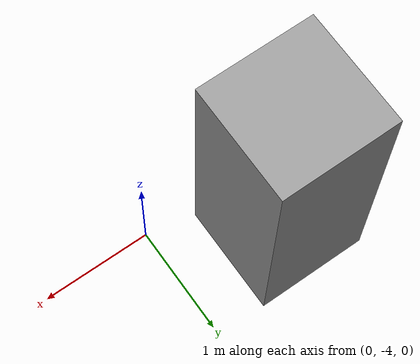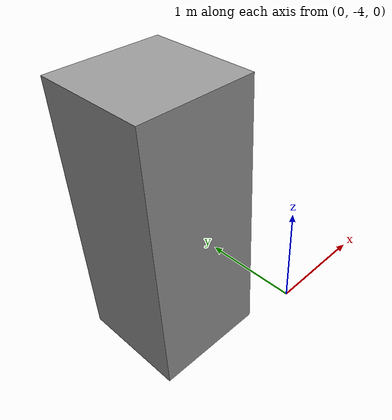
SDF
<?xml version='1.0'?>
<sdf version='1.6'>
  <model name='pier1'>
    <pose frame=''>-0.955 -3.41 0 0 -0 0</pose>
    <link name='Wall_2'>
      <collision name='Wall_2_Collision'>
        <geometry>
          <box>
            <size>1.01 1 2.45</size>
          </box>
        </geometry>
        <pose frame=''>0 0 1.225 0 -0 0</pose>
      </collision>
      <visual name='Wall_2_Visual'>
        <pose frame=''>0 0 1.225 0 -0 0</pose>
        <geometry>
          <box>
            <size>1.01 1 2.45</size>
          </box>
        </geometry>
        <material>
          <script>
            <uri>file://media/materials/scripts/gazebo.material</uri>
            <name>Gazebo/Grey</name>
          </script>
          <ambient>1 1 1 1</ambient>
        </material>
      </visual>
      <pose frame=''>0 0 0 0 -0 0</pose>
    </link>
    <static>1</static>
  </model>
</sdf>
